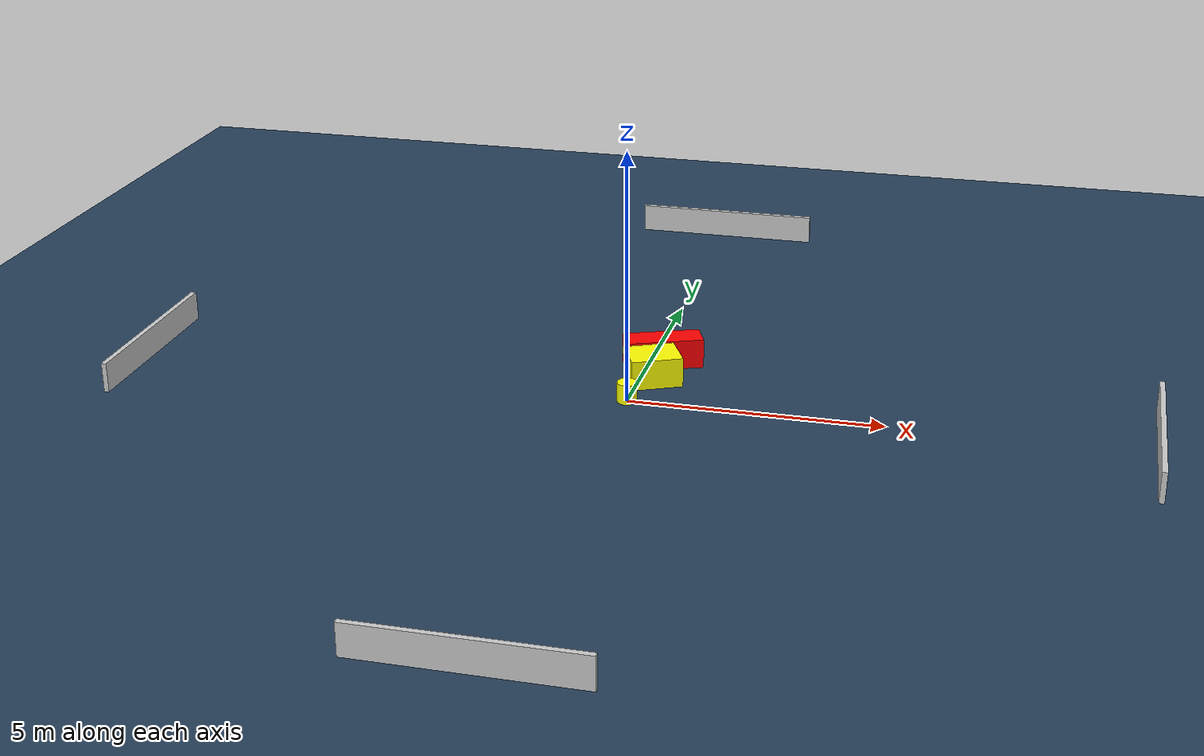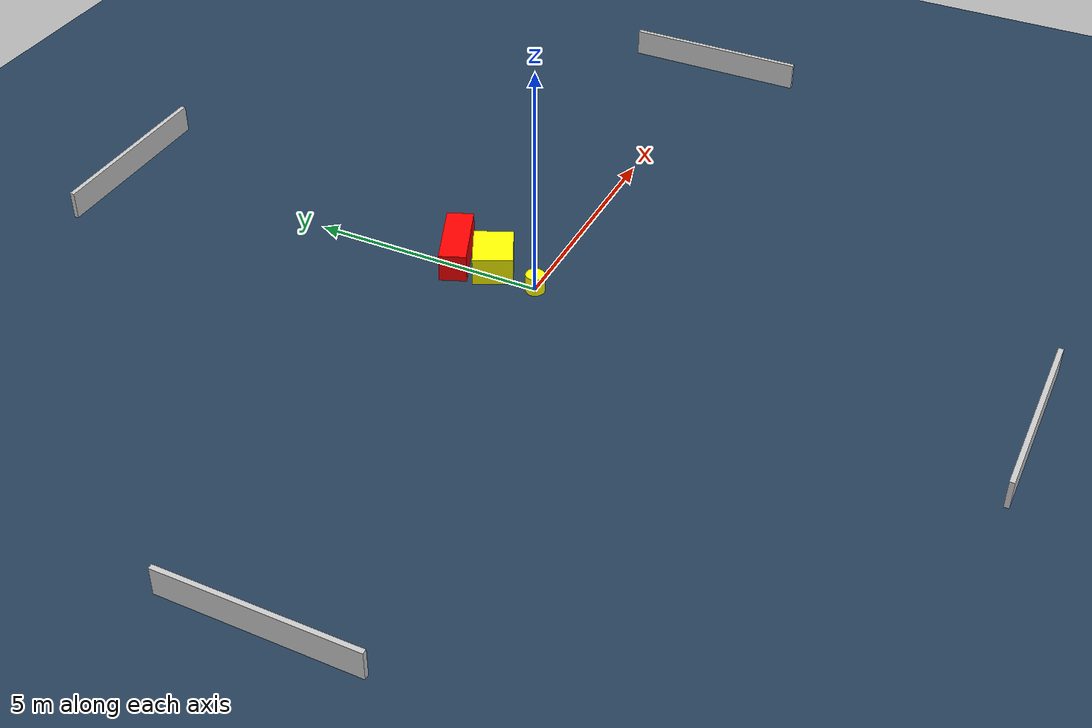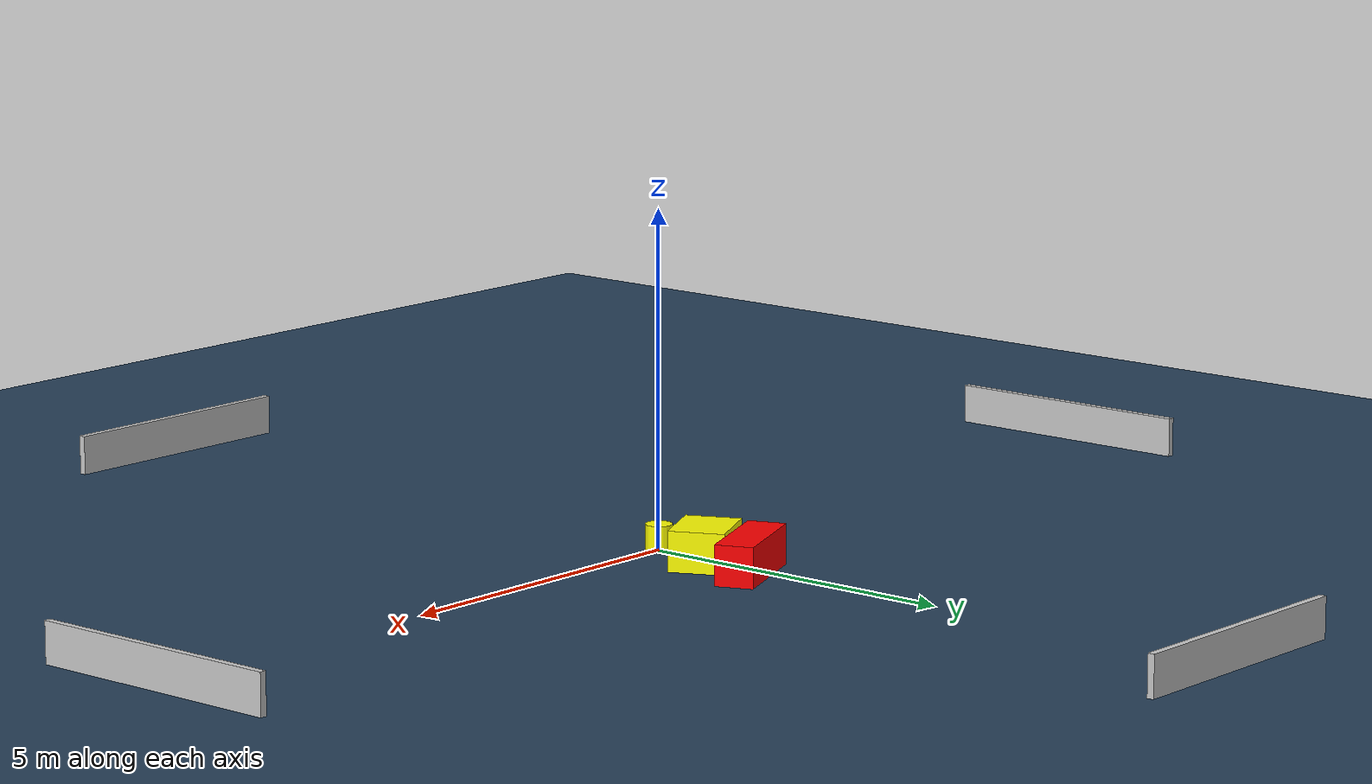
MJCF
<?xml version="1.0" ?>
<mujoco model="generated_environment">
  <option timestep="0.01" integrator="RK4" cone="elliptic"/>
  <default>
    <geom density="1"/>
  </default>
  <asset>
    <texture builtin="gradient" height="3072" name="skybox" rgb1="0.3 0.5 0.7" rgb2="0 0 0" type="skybox" width="512"/>
    <texture builtin="checker" height="300" name="groundplane" rgb1="0.2 0.3 0.4" rgb2="0.1 0.2 0.3" type="2d" width="300"/>
    <material name="groundplane" reflectance="0.2" texrepeat="5 5" texture="groundplane"/>
  </asset>
  <worldbody>
    <light dir="0 0 -1" directional="true" pos="0 0 1.5"/>
    <geom condim="3" friction="0.5 0.005 0.001" material="groundplane" name="floor" pos="0 0 0" size="0 0 0.05" type="plane"/>
    <body name="walls">
      <geom name="wall_1" condim="4" pos="-10.0 0.0 0.3" rgba="0.800000011920929 0.800000011920929 0.800000011920929 1.0" size="0.05 2.0 0.3" type="box"/>
      <geom name="wall_2" condim="4" pos="10.0 0.0 0.3" rgba="0.800000011920929 0.800000011920929 0.800000011920929 1.0" size="0.05 2.0 0.3" type="box"/>
      <geom name="wall_3" condim="4" pos="0.0 -10.0 0.3" rgba="0.800000011920929 0.800000011920929 0.800000011920929 1.0" size="2.0 0.05 0.3" type="box"/>
      <geom name="wall_4" condim="4" pos="0.0 10.0 0.3" rgba="0.800000011920929 0.800000011920929 0.800000011920929 1.0" size="2.0 0.05 0.3" type="box"/>
    </body>
    <body name="robot">
      <joint name="joint_x" type="slide" pos="0 0 0" axis="1 0 0"/>
      <joint name="joint_y" type="slide" pos="0 0 0" axis="0 1 0"/>
      <geom name="robot" type="cylinder" pos="0.0 0.0 0.2" size="0.2 0.2 0.0" mass="5.0" friction="1.0 0.005 0.0001" condim="4" rgba="1.0 1.0 0.0 1.0"/>
    </body>
    <body name="obstacle_1_movable">
      <geom name="obstacle_1_movable" condim="4" pos="0.2585793912422519 1.0823449820265176 0.3" euler="0 0 115.68134127875811" friction="0.0 0.005 0.001" rgba="1.0 1.0 0.0 1.0" size="0.41405487964726395 0.5127586114715579 0.3" type="box" mass="0.1"/>
      <joint type="free"/>
    </body>
    <body name="obstacle_2_static">
      <geom name="obstacle_2_static" condim="4" pos="0.2726286075644458 1.9388594968611252 0.3" euler="0 0 21.941918744145536" friction="0.0 0.005 0.001" rgba="1.0 0.0 0.0 1.0" size="0.777506386020697 0.28419458543593046 0.3" type="box"/>
    </body>
  </worldbody>
  <actuator>
    <motor name="actuator_x" joint="joint_x" gear="1" ctrlrange="-1 1"/>
    <motor name="actuator_y" joint="joint_y" gear="1" ctrlrange="-1 1"/>
  </actuator>
</mujoco>
